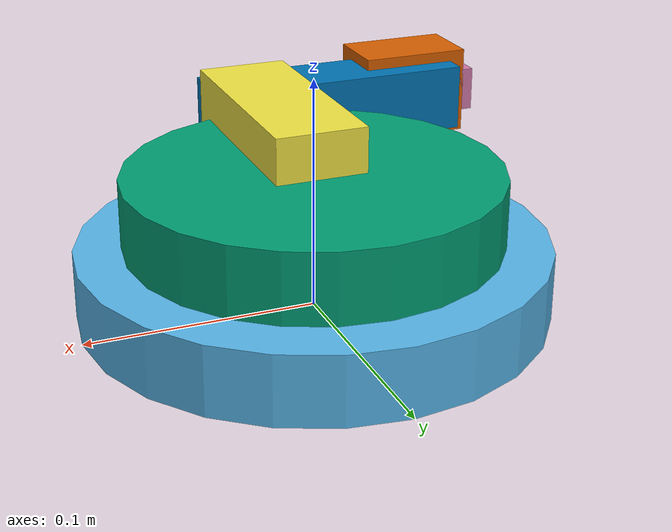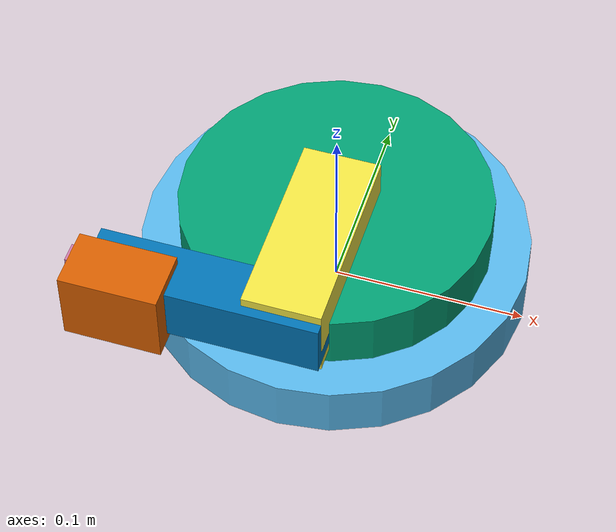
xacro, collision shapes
<?xml version="1.0"?>
<robot xmlns:xacro="http://www.ros.org/wiki/xacro" name="industrial_arm">

  <xacro:property name="PI" value="3.14159265359"/>
  <xacro:property name="mesh_scale" value="0.01 0.01 0.01"/>
  <xacro:property name="joint_effort" value="30.0"/>
  <xacro:property name="joint_velocity" value="2.0"/>

  <xacro:macro name="box_inertial" params="mass x y z">
    <inertial>
      <mass value="${mass}"/>
      <origin xyz="0 0 0" rpy="0 0 0"/>
      <inertia ixx="${(1/12) * mass * (y*y + z*z)}" ixy="0.0" ixz="0.0"
               iyy="${(1/12) * mass * (x*x + z*z)}" iyz="0.0"
               izz="${(1/12) * mass * (x*x + y*y)}"/>
    </inertial>
  </xacro:macro>

  <link name="world"/>

  <joint name="virtual_joint" type="fixed">
    <parent link="world"/>
    <child link="base_link"/>
    <origin xyz="0 0 0" rpy="0 0 0"/>
  </joint>

  <link name="base_link">
    <visual>
      <origin xyz="-0.5 -0.5 0" rpy="0 0 0"/>
      <geometry>
        <mesh filename="package://industrial_arm_description/meshes/base_link.stl" scale="${mesh_scale}"/>
      </geometry>
    </visual>
    <collision>
      <origin xyz="0 0 0.015" rpy="0 0 0"/>
      <geometry><cylinder radius="0.1" length="0.03"/></geometry>
    </collision>
    <xacro:box_inertial mass="1.5" x="0.2" y="0.2" z="0.03"/>
  </link>

  <joint name="joint1" type="revolute">
    <parent link="base_link"/>
    <child link="base_plate"/>
    <origin xyz="0 0 0.0307" rpy="0 0 0"/>
    <axis xyz="0 0 1"/>
    <limit lower="-${PI}" upper="${PI}" effort="${joint_effort}" velocity="${joint_velocity}"/>
  </joint>

  <link name="base_plate">
    <visual>
      <origin xyz="0 0 0" rpy="0 0 0"/>
      <geometry>
        <mesh filename="package://industrial_arm_description/meshes/base_plate.stl" scale="${mesh_scale}"/>
      </geometry>
    </visual>
    <collision>
      <origin xyz="0 0 0.015" rpy="0 0 0"/>
      <geometry><cylinder radius="0.08" length="0.03"/></geometry>
    </collision>
    <xacro:box_inertial mass="1.0" x="0.16" y="0.16" z="0.03"/>
  </link>

  <joint name="joint2" type="revolute">
    <parent link="base_plate"/>
    <child link="forward_drive_arm"/>
    <origin xyz="0 0 0.03" rpy="0 -${PI/2} ${PI/2}"/>
    <axis xyz="0 1 0"/>
    <limit lower="-${PI/2}" upper="${PI/2}" effort="${joint_effort}" velocity="${joint_velocity}"/>
  </joint>

  <link name="forward_drive_arm">
    <visual>
      <origin xyz="0 0 0" rpy="0 0 0"/>
      <geometry>
        <mesh filename="package://industrial_arm_description/meshes/forward_drive_arm.stl" scale="${mesh_scale}"/>
      </geometry>
    </visual>
    <collision>
      <origin xyz="0 0 0.04" rpy="0 0 0"/>
      <geometry><box size="0.04 0.04 0.1"/></geometry>
    </collision>
    <xacro:box_inertial mass="0.8" x="0.04" y="0.04" z="0.1"/>
  </link>

  <joint name="joint3" type="revolute">
    <parent link="forward_drive_arm"/>
    <child link="horizontal_arm"/>
    <origin xyz="0 0 0.08" rpy="${PI/2} 0 ${PI/2}"/>
    <axis xyz="0 1 0"/>
    <limit lower="-${PI/2}" upper="${PI/2}" effort="${joint_effort}" velocity="${joint_velocity}"/>
  </joint>

  <link name="horizontal_arm">
    <visual>
      <origin xyz="0 0 0" rpy="0 0 0"/>
      <geometry>
        <mesh filename="package://industrial_arm_description/meshes/horizontal_arm.stl" scale="${mesh_scale}"/>
      </geometry>
    </visual>
    <collision>
      <origin xyz="0.04 0 0" rpy="0 0 0"/>
      <geometry><box size="0.12 0.03 0.03"/></geometry>
    </collision>
    <xacro:box_inertial mass="0.5" x="0.12" y="0.03" z="0.03"/>
  </link>

  <joint name="joint4" type="revolute">
    <parent link="horizontal_arm"/>
    <child link="claw_support"/>
    <origin xyz="0.082 0 0" rpy="0 0 ${PI/2}"/>
    <axis xyz="0 0 1"/>
    <limit lower="-${PI/2}" upper="${PI/2}" effort="${joint_effort}" velocity="${joint_velocity}"/>
  </joint>

  <link name="claw_support">
    <visual>
      <origin xyz="0 0 0" rpy="0 0 0"/>
      <geometry>
        <mesh filename="package://industrial_arm_description/meshes/claw_support.stl" scale="${mesh_scale}"/>
      </geometry>
    </visual>
    <collision>
      <origin xyz="0.01 0 0" rpy="0 0 0"/>
      <geometry><box size="0.03 0.05 0.04"/></geometry>
    </collision>
    <xacro:box_inertial mass="0.3" x="0.03" y="0.05" z="0.04"/>
  </link>

  <joint name="joint5_right" type="prismatic">
    <parent link="claw_support"/>
    <child link="gripper_right"/>
    <origin xyz="0 -0.01 0" rpy="0 0 -${PI/2}"/>
    <axis xyz="1 0 0"/>
    <limit lower="0.0" upper="0.022" effort="10.0" velocity="0.5"/>
  </joint>

  <link name="gripper_right">
    <visual>
      <origin xyz="0 0 0" rpy="0 0 0"/>
      <geometry>
        <mesh filename="package://industrial_arm_description/meshes/gripper_right.stl" scale="${mesh_scale}"/>
      </geometry>
    </visual>
    <collision>
      <origin xyz="0.01 0 0" rpy="0 0 0"/>
      <geometry><box size="0.02 0.01 0.02"/></geometry>
    </collision>
    <xacro:box_inertial mass="0.05" x="0.02" y="0.01" z="0.02"/>
  </link>

  <joint name="joint5_left" type="prismatic">
    <parent link="claw_support"/>
    <child link="gripper_left"/>
    <origin xyz="0 0.01 0" rpy="0 0 -${PI/2}"/>
    <axis xyz="1 0 0"/>
    <limit lower="0.0" upper="0.022" effort="10.0" velocity="0.5"/>
    <mimic joint="joint5_right" multiplier="1"/>
  </joint>

  <link name="gripper_left">
    <visual>
      <origin xyz="0 0 0" rpy="0 0 0"/>
      <geometry>
        <mesh filename="package://industrial_arm_description/meshes/gripper_left.stl" scale="${mesh_scale}"/>
      </geometry>
    </visual>
    <collision>
      <origin xyz="0.01 0 0" rpy="0 0 0"/>
      <geometry><box size="0.02 0.01 0.02"/></geometry>
    </collision>
    <xacro:box_inertial mass="0.05" x="0.02" y="0.01" z="0.02"/>
  </link>

</robot>
